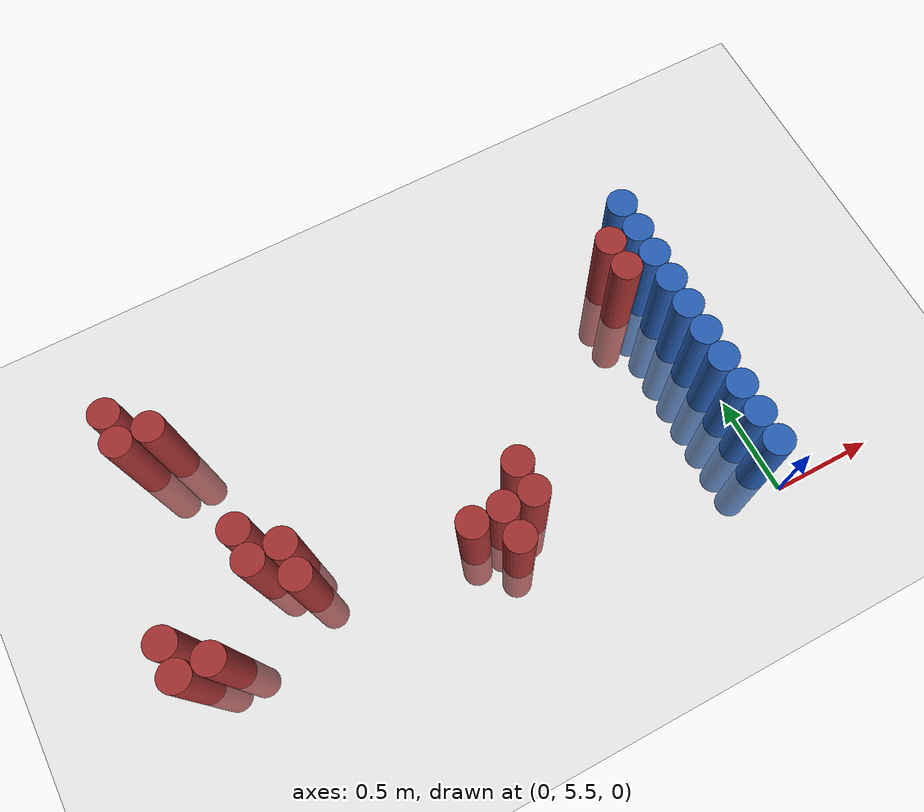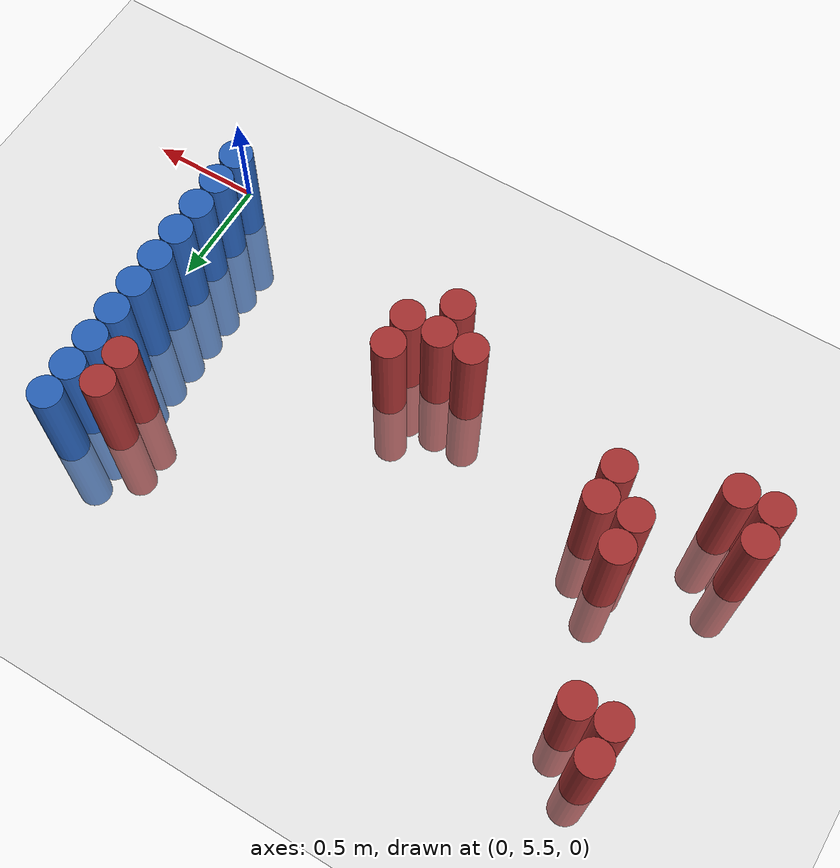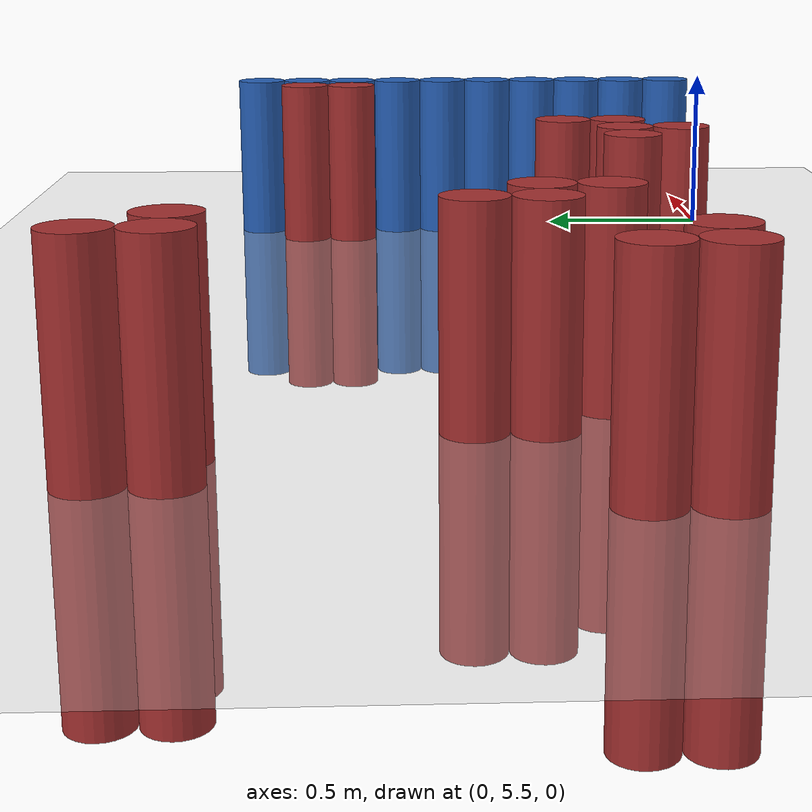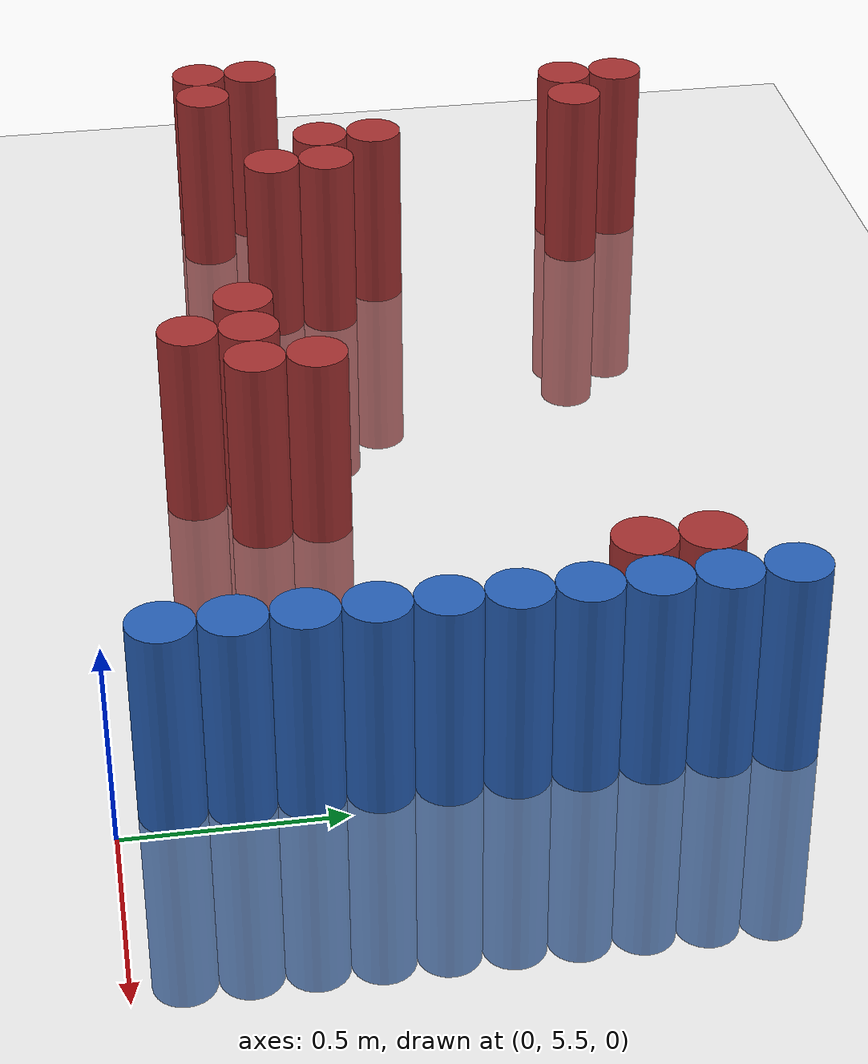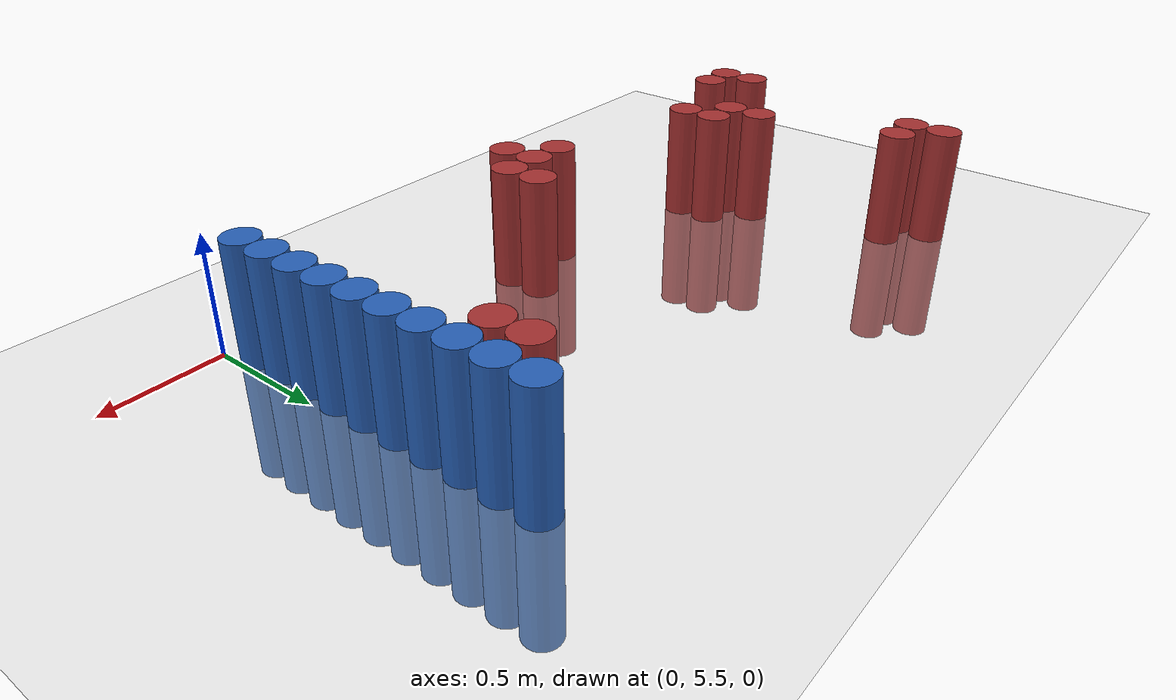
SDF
<sdf version="1.6">
 <world name="world_209">
  <model name="ground_plane">
   <static>1</static>
   <link name="link">
    <collision name="collision">
     <geometry><plane><normal>0 0 1</normal><size>100 100</size></plane></geometry>
     <surface><friction><ode><mu>100</mu><mu2>50</mu2></ode></friction></surface>
    </collision>
    <visual name="visual">
     <cast_shadows>0</cast_shadows>
     <geometry><plane><normal>0 0 1</normal><size>100 100</size></plane></geometry>
     <material>
      <script><uri>file://media/materials/scripts/gazebo.material</uri><name>Gazebo/Grey</name></script>
     </material>
    </visual>
   </link>
  </model>
  <model name="unit_cylinder_169">
   <static>1</static>
   <pose>-2.775000 5.925000 0.000000 0.000000 0.000000 0.000000</pose>
   <link name="link">
    <inertial>
     <mass>1</mass>
     <inertia><ixx>0.145833</ixx><ixy>0</ixy><ixz>0</ixz><iyy>0.145833</iyy><iyz>0</iyz><izz>0.125</izz></inertia>
    </inertial>
    <collision name="collision">
     <geometry><cylinder><radius>0.075000</radius><length>1</length></cylinder></geometry>
    </collision>
    <visual name="visual">
     <geometry><cylinder><radius>0.075000</radius><length>1</length></cylinder></geometry>
     <material>
      <ambient>0.648000 0.192000 0.192000 1</ambient>
      <diffuse>0.648000 0.192000 0.192000 1</diffuse>
     </material>
     <material>
      <script><name>Gazebo/Grey</name><uri>file://media/materials/scripts/gazebo.material</uri></script>
     </material>
    </visual>
   </link>
  </model>
  <model name="unit_cylinder_170">
   <static>1</static>
   <pose>-2.775000 6.075000 0.000000 0.000000 0.000000 0.000000</pose>
   <link name="link">
    <inertial>
     <mass>1</mass>
     <inertia><ixx>0.145833</ixx><ixy>0</ixy><ixz>0</ixz><iyy>0.145833</iyy><iyz>0</iyz><izz>0.125</izz></inertia>
    </inertial>
    <collision name="collision">
     <geometry><cylinder><radius>0.075000</radius><length>1</length></cylinder></geometry>
    </collision>
    <visual name="visual">
     <geometry><cylinder><radius>0.075000</radius><length>1</length></cylinder></geometry>
     <material>
      <ambient>0.648000 0.192000 0.192000 1</ambient>
      <diffuse>0.648000 0.192000 0.192000 1</diffuse>
     </material>
     <material>
      <script><name>Gazebo/Grey</name><uri>file://media/materials/scripts/gazebo.material</uri></script>
     </material>
    </visual>
   </link>
  </model>
  <model name="unit_cylinder_171">
   <static>1</static>
   <pose>-2.625000 5.925000 0.000000 0.000000 0.000000 0.000000</pose>
   <link name="link">
    <inertial>
     <mass>1</mass>
     <inertia><ixx>0.145833</ixx><ixy>0</ixy><ixz>0</ixz><iyy>0.145833</iyy><iyz>0</iyz><izz>0.125</izz></inertia>
    </inertial>
    <collision name="collision">
     <geometry><cylinder><radius>0.075000</radius><length>1</length></cylinder></geometry>
    </collision>
    <visual name="visual">
     <geometry><cylinder><radius>0.075000</radius><length>1</length></cylinder></geometry>
     <material>
      <ambient>0.648000 0.192000 0.192000 1</ambient>
      <diffuse>0.648000 0.192000 0.192000 1</diffuse>
     </material>
     <material>
      <script><name>Gazebo/Grey</name><uri>file://media/materials/scripts/gazebo.material</uri></script>
     </material>
    </visual>
   </link>
  </model>
  <model name="unit_cylinder_172">
   <static>1</static>
   <pose>-2.625000 6.975000 0.000000 0.000000 0.000000 0.000000</pose>
   <link name="link">
    <inertial>
     <mass>1</mass>
     <inertia><ixx>0.145833</ixx><ixy>0</ixy><ixz>0</ixz><iyy>0.145833</iyy><iyz>0</iyz><izz>0.125</izz></inertia>
    </inertial>
    <collision name="collision">
     <geometry><cylinder><radius>0.075000</radius><length>1</length></cylinder></geometry>
    </collision>
    <visual name="visual">
     <geometry><cylinder><radius>0.075000</radius><length>1</length></cylinder></geometry>
     <material>
      <ambient>0.648000 0.192000 0.192000 1</ambient>
      <diffuse>0.648000 0.192000 0.192000 1</diffuse>
     </material>
     <material>
      <script><name>Gazebo/Grey</name><uri>file://media/materials/scripts/gazebo.material</uri></script>
     </material>
    </visual>
   </link>
  </model>
  <model name="unit_cylinder_173">
   <static>1</static>
   <pose>-2.625000 7.125000 0.000000 0.000000 0.000000 0.000000</pose>
   <link name="link">
    <inertial>
     <mass>1</mass>
     <inertia><ixx>0.145833</ixx><ixy>0</ixy><ixz>0</ixz><iyy>0.145833</iyy><iyz>0</iyz><izz>0.125</izz></inertia>
    </inertial>
    <collision name="collision">
     <geometry><cylinder><radius>0.075000</radius><length>1</length></cylinder></geometry>
    </collision>
    <visual name="visual">
     <geometry><cylinder><radius>0.075000</radius><length>1</length></cylinder></geometry>
     <material>
      <ambient>0.648000 0.192000 0.192000 1</ambient>
      <diffuse>0.648000 0.192000 0.192000 1</diffuse>
     </material>
     <material>
      <script><name>Gazebo/Grey</name><uri>file://media/materials/scripts/gazebo.material</uri></script>
     </material>
    </visual>
   </link>
  </model>
  <model name="unit_cylinder_174">
   <static>1</static>
   <pose>-2.475000 6.975000 0.000000 0.000000 0.000000 0.000000</pose>
   <link name="link">
    <inertial>
     <mass>1</mass>
     <inertia><ixx>0.145833</ixx><ixy>0</ixy><ixz>0</ixz><iyy>0.145833</iyy><iyz>0</iyz><izz>0.125</izz></inertia>
    </inertial>
    <collision name="collision">
     <geometry><cylinder><radius>0.075000</radius><length>1</length></cylinder></geometry>
    </collision>
    <visual name="visual">
     <geometry><cylinder><radius>0.075000</radius><length>1</length></cylinder></geometry>
     <material>
      <ambient>0.648000 0.192000 0.192000 1</ambient>
      <diffuse>0.648000 0.192000 0.192000 1</diffuse>
     </material>
     <material>
      <script><name>Gazebo/Grey</name><uri>file://media/materials/scripts/gazebo.material</uri></script>
     </material>
    </visual>
   </link>
  </model>
  <model name="unit_cylinder_175">
   <static>1</static>
   <pose>-2.325000 6.225000 0.000000 0.000000 0.000000 0.000000</pose>
   <link name="link">
    <inertial>
     <mass>1</mass>
     <inertia><ixx>0.145833</ixx><ixy>0</ixy><ixz>0</ixz><iyy>0.145833</iyy><iyz>0</iyz><izz>0.125</izz></inertia>
    </inertial>
    <collision name="collision">
     <geometry><cylinder><radius>0.075000</radius><length>1</length></cylinder></geometry>
    </collision>
    <visual name="visual">
     <geometry><cylinder><radius>0.075000</radius><length>1</length></cylinder></geometry>
     <material>
      <ambient>0.648000 0.192000 0.192000 1</ambient>
      <diffuse>0.648000 0.192000 0.192000 1</diffuse>
     </material>
     <material>
      <script><name>Gazebo/Grey</name><uri>file://media/materials/scripts/gazebo.material</uri></script>
     </material>
    </visual>
   </link>
  </model>
  <model name="unit_cylinder_176">
   <static>1</static>
   <pose>-2.325000 6.375000 0.000000 0.000000 0.000000 0.000000</pose>
   <link name="link">
    <inertial>
     <mass>1</mass>
     <inertia><ixx>0.145833</ixx><ixy>0</ixy><ixz>0</ixz><iyy>0.145833</iyy><iyz>0</iyz><izz>0.125</izz></inertia>
    </inertial>
    <collision name="collision">
     <geometry><cylinder><radius>0.075000</radius><length>1</length></cylinder></geometry>
    </collision>
    <visual name="visual">
     <geometry><cylinder><radius>0.075000</radius><length>1</length></cylinder></geometry>
     <material>
      <ambient>0.648000 0.192000 0.192000 1</ambient>
      <diffuse>0.648000 0.192000 0.192000 1</diffuse>
     </material>
     <material>
      <script><name>Gazebo/Grey</name><uri>file://media/materials/scripts/gazebo.material</uri></script>
     </material>
    </visual>
   </link>
  </model>
  <model name="unit_cylinder_177">
   <static>1</static>
   <pose>-2.175000 6.075000 0.000000 0.000000 0.000000 0.000000</pose>
   <link name="link">
    <inertial>
     <mass>1</mass>
     <inertia><ixx>0.145833</ixx><ixy>0</ixy><ixz>0</ixz><iyy>0.145833</iyy><iyz>0</iyz><izz>0.125</izz></inertia>
    </inertial>
    <collision name="collision">
     <geometry><cylinder><radius>0.075000</radius><length>1</length></cylinder></geometry>
    </collision>
    <visual name="visual">
     <geometry><cylinder><radius>0.075000</radius><length>1</length></cylinder></geometry>
     <material>
      <ambient>0.648000 0.192000 0.192000 1</ambient>
      <diffuse>0.648000 0.192000 0.192000 1</diffuse>
     </material>
     <material>
      <script><name>Gazebo/Grey</name><uri>file://media/materials/scripts/gazebo.material</uri></script>
     </material>
    </visual>
   </link>
  </model>
  <model name="unit_cylinder_178">
   <static>1</static>
   <pose>-2.175000 6.225000 0.000000 0.000000 0.000000 0.000000</pose>
   <link name="link">
    <inertial>
     <mass>1</mass>
     <inertia><ixx>0.145833</ixx><ixy>0</ixy><ixz>0</ixz><iyy>0.145833</iyy><iyz>0</iyz><izz>0.125</izz></inertia>
    </inertial>
    <collision name="collision">
     <geometry><cylinder><radius>0.075000</radius><length>1</length></cylinder></geometry>
    </collision>
    <visual name="visual">
     <geometry><cylinder><radius>0.075000</radius><length>1</length></cylinder></geometry>
     <material>
      <ambient>0.648000 0.192000 0.192000 1</ambient>
      <diffuse>0.648000 0.192000 0.192000 1</diffuse>
     </material>
     <material>
      <script><name>Gazebo/Grey</name><uri>file://media/materials/scripts/gazebo.material</uri></script>
     </material>
    </visual>
   </link>
  </model>
  <model name="unit_cylinder_179">
   <static>1</static>
   <pose>-1.425000 5.925000 0.000000 0.000000 0.000000 0.000000</pose>
   <link name="link">
    <inertial>
     <mass>1</mass>
     <inertia><ixx>0.145833</ixx><ixy>0</ixy><ixz>0</ixz><iyy>0.145833</iyy><iyz>0</iyz><izz>0.125</izz></inertia>
    </inertial>
    <collision name="collision">
     <geometry><cylinder><radius>0.075000</radius><length>1</length></cylinder></geometry>
    </collision>
    <visual name="visual">
     <geometry><cylinder><radius>0.075000</radius><length>1</length></cylinder></geometry>
     <material>
      <ambient>0.648000 0.192000 0.192000 1</ambient>
      <diffuse>0.648000 0.192000 0.192000 1</diffuse>
     </material>
     <material>
      <script><name>Gazebo/Grey</name><uri>file://media/materials/scripts/gazebo.material</uri></script>
     </material>
    </visual>
   </link>
  </model>
  <model name="unit_cylinder_180">
   <static>1</static>
   <pose>-1.275000 5.775000 0.000000 0.000000 0.000000 0.000000</pose>
   <link name="link">
    <inertial>
     <mass>1</mass>
     <inertia><ixx>0.145833</ixx><ixy>0</ixy><ixz>0</ixz><iyy>0.145833</iyy><iyz>0</iyz><izz>0.125</izz></inertia>
    </inertial>
    <collision name="collision">
     <geometry><cylinder><radius>0.075000</radius><length>1</length></cylinder></geometry>
    </collision>
    <visual name="visual">
     <geometry><cylinder><radius>0.075000</radius><length>1</length></cylinder></geometry>
     <material>
      <ambient>0.648000 0.192000 0.192000 1</ambient>
      <diffuse>0.648000 0.192000 0.192000 1</diffuse>
     </material>
     <material>
      <script><name>Gazebo/Grey</name><uri>file://media/materials/scripts/gazebo.material</uri></script>
     </material>
    </visual>
   </link>
  </model>
  <model name="unit_cylinder_181">
   <static>1</static>
   <pose>-1.275000 5.925000 0.000000 0.000000 0.000000 0.000000</pose>
   <link name="link">
    <inertial>
     <mass>1</mass>
     <inertia><ixx>0.145833</ixx><ixy>0</ixy><ixz>0</ixz><iyy>0.145833</iyy><iyz>0</iyz><izz>0.125</izz></inertia>
    </inertial>
    <collision name="collision">
     <geometry><cylinder><radius>0.075000</radius><length>1</length></cylinder></geometry>
    </collision>
    <visual name="visual">
     <geometry><cylinder><radius>0.075000</radius><length>1</length></cylinder></geometry>
     <material>
      <ambient>0.648000 0.192000 0.192000 1</ambient>
      <diffuse>0.648000 0.192000 0.192000 1</diffuse>
     </material>
     <material>
      <script><name>Gazebo/Grey</name><uri>file://media/materials/scripts/gazebo.material</uri></script>
     </material>
    </visual>
   </link>
  </model>
  <model name="unit_cylinder_182">
   <static>1</static>
   <pose>-1.125000 5.925000 0.000000 0.000000 0.000000 0.000000</pose>
   <link name="link">
    <inertial>
     <mass>1</mass>
     <inertia><ixx>0.145833</ixx><ixy>0</ixy><ixz>0</ixz><iyy>0.145833</iyy><iyz>0</iyz><izz>0.125</izz></inertia>
    </inertial>
    <collision name="collision">
     <geometry><cylinder><radius>0.075000</radius><length>1</length></cylinder></geometry>
    </collision>
    <visual name="visual">
     <geometry><cylinder><radius>0.075000</radius><length>1</length></cylinder></geometry>
     <material>
      <ambient>0.648000 0.192000 0.192000 1</ambient>
      <diffuse>0.648000 0.192000 0.192000 1</diffuse>
     </material>
     <material>
      <script><name>Gazebo/Grey</name><uri>file://media/materials/scripts/gazebo.material</uri></script>
     </material>
    </visual>
   </link>
  </model>
  <model name="unit_cylinder_183">
   <static>1</static>
   <pose>-1.125000 6.075000 0.000000 0.000000 0.000000 0.000000</pose>
   <link name="link">
    <inertial>
     <mass>1</mass>
     <inertia><ixx>0.145833</ixx><ixy>0</ixy><ixz>0</ixz><iyy>0.145833</iyy><iyz>0</iyz><izz>0.125</izz></inertia>
    </inertial>
    <collision name="collision">
     <geometry><cylinder><radius>0.075000</radius><length>1</length></cylinder></geometry>
    </collision>
    <visual name="visual">
     <geometry><cylinder><radius>0.075000</radius><length>1</length></cylinder></geometry>
     <material>
      <ambient>0.648000 0.192000 0.192000 1</ambient>
      <diffuse>0.648000 0.192000 0.192000 1</diffuse>
     </material>
     <material>
      <script><name>Gazebo/Grey</name><uri>file://media/materials/scripts/gazebo.material</uri></script>
     </material>
    </visual>
   </link>
  </model>
  <model name="unit_cylinder_184">
   <static>1</static>
   <pose>-0.225000 6.675000 0.000000 0.000000 0.000000 0.000000</pose>
   <link name="link">
    <inertial>
     <mass>1</mass>
     <inertia><ixx>0.145833</ixx><ixy>0</ixy><ixz>0</ixz><iyy>0.145833</iyy><iyz>0</iyz><izz>0.125</izz></inertia>
    </inertial>
    <collision name="collision">
     <geometry><cylinder><radius>0.075000</radius><length>1</length></cylinder></geometry>
    </collision>
    <visual name="visual">
     <geometry><cylinder><radius>0.075000</radius><length>1</length></cylinder></geometry>
     <material>
      <ambient>0.648000 0.192000 0.192000 1</ambient>
      <diffuse>0.648000 0.192000 0.192000 1</diffuse>
     </material>
     <material>
      <script><name>Gazebo/Grey</name><uri>file://media/materials/scripts/gazebo.material</uri></script>
     </material>
    </visual>
   </link>
  </model>
  <model name="unit_cylinder_185">
   <static>1</static>
   <pose>-0.225000 6.825000 0.000000 0.000000 0.000000 0.000000</pose>
   <link name="link">
    <inertial>
     <mass>1</mass>
     <inertia><ixx>0.145833</ixx><ixy>0</ixy><ixz>0</ixz><iyy>0.145833</iyy><iyz>0</iyz><izz>0.125</izz></inertia>
    </inertial>
    <collision name="collision">
     <geometry><cylinder><radius>0.075000</radius><length>1</length></cylinder></geometry>
    </collision>
    <visual name="visual">
     <geometry><cylinder><radius>0.075000</radius><length>1</length></cylinder></geometry>
     <material>
      <ambient>0.648000 0.192000 0.192000 1</ambient>
      <diffuse>0.648000 0.192000 0.192000 1</diffuse>
     </material>
     <material>
      <script><name>Gazebo/Grey</name><uri>file://media/materials/scripts/gazebo.material</uri></script>
     </material>
    </visual>
   </link>
  </model>
  <model name="unit_cylinder_191">
   <static>1</static>
   <pose>-0.075000 5.625000 0.000000 0.000000 0.000000 0.000000</pose>
   <link name="link">
    <inertial>
     <mass>1</mass>
     <inertia><ixx>0.145833</ixx><ixy>0</ixy><ixz>0</ixz><iyy>0.145833</iyy><iyz>0</iyz><izz>0.125</izz></inertia>
    </inertial>
    <collision name="collision">
     <geometry><cylinder><radius>0.075000</radius><length>1</length></cylinder></geometry>
    </collision>
    <visual name="visual">
     <geometry><cylinder><radius>0.075000</radius><length>1</length></cylinder></geometry>
     <material>
      <ambient>0.152000 0.379000 0.720000 1</ambient>
      <diffuse>0.152000 0.379000 0.720000 1</diffuse>
     </material>
     <material>
      <script><name>Gazebo/Grey</name><uri>file://media/materials/scripts/gazebo.material</uri></script>
     </material>
    </visual>
   </link>
  </model>
  <model name="unit_cylinder_192">
   <static>1</static>
   <pose>-0.075000 5.775000 0.000000 0.000000 0.000000 0.000000</pose>
   <link name="link">
    <inertial>
     <mass>1</mass>
     <inertia><ixx>0.145833</ixx><ixy>0</ixy><ixz>0</ixz><iyy>0.145833</iyy><iyz>0</iyz><izz>0.125</izz></inertia>
    </inertial>
    <collision name="collision">
     <geometry><cylinder><radius>0.075000</radius><length>1</length></cylinder></geometry>
    </collision>
    <visual name="visual">
     <geometry><cylinder><radius>0.075000</radius><length>1</length></cylinder></geometry>
     <material>
      <ambient>0.152000 0.379000 0.720000 1</ambient>
      <diffuse>0.152000 0.379000 0.720000 1</diffuse>
     </material>
     <material>
      <script><name>Gazebo/Grey</name><uri>file://media/materials/scripts/gazebo.material</uri></script>
     </material>
    </visual>
   </link>
  </model>
  <model name="unit_cylinder_193">
   <static>1</static>
   <pose>-0.075000 5.925000 0.000000 0.000000 0.000000 0.000000</pose>
   <link name="link">
    <inertial>
     <mass>1</mass>
     <inertia><ixx>0.145833</ixx><ixy>0</ixy><ixz>0</ixz><iyy>0.145833</iyy><iyz>0</iyz><izz>0.125</izz></inertia>
    </inertial>
    <collision name="collision">
     <geometry><cylinder><radius>0.075000</radius><length>1</length></cylinder></geometry>
    </collision>
    <visual name="visual">
     <geometry><cylinder><radius>0.075000</radius><length>1</length></cylinder></geometry>
     <material>
      <ambient>0.152000 0.379000 0.720000 1</ambient>
      <diffuse>0.152000 0.379000 0.720000 1</diffuse>
     </material>
     <material>
      <script><name>Gazebo/Grey</name><uri>file://media/materials/scripts/gazebo.material</uri></script>
     </material>
    </visual>
   </link>
  </model>
  <model name="unit_cylinder_194">
   <static>1</static>
   <pose>-0.075000 6.075000 0.000000 0.000000 0.000000 0.000000</pose>
   <link name="link">
    <inertial>
     <mass>1</mass>
     <inertia><ixx>0.145833</ixx><ixy>0</ixy><ixz>0</ixz><iyy>0.145833</iyy><iyz>0</iyz><izz>0.125</izz></inertia>
    </inertial>
    <collision name="collision">
     <geometry><cylinder><radius>0.075000</radius><length>1</length></cylinder></geometry>
    </collision>
    <visual name="visual">
     <geometry><cylinder><radius>0.075000</radius><length>1</length></cylinder></geometry>
     <material>
      <ambient>0.152000 0.379000 0.720000 1</ambient>
      <diffuse>0.152000 0.379000 0.720000 1</diffuse>
     </material>
     <material>
      <script><name>Gazebo/Grey</name><uri>file://media/materials/scripts/gazebo.material</uri></script>
     </material>
    </visual>
   </link>
  </model>
  <model name="unit_cylinder_195">
   <static>1</static>
   <pose>-0.075000 6.225000 0.000000 0.000000 0.000000 0.000000</pose>
   <link name="link">
    <inertial>
     <mass>1</mass>
     <inertia><ixx>0.145833</ixx><ixy>0</ixy><ixz>0</ixz><iyy>0.145833</iyy><iyz>0</iyz><izz>0.125</izz></inertia>
    </inertial>
    <collision name="collision">
     <geometry><cylinder><radius>0.075000</radius><length>1</length></cylinder></geometry>
    </collision>
    <visual name="visual">
     <geometry><cylinder><radius>0.075000</radius><length>1</length></cylinder></geometry>
     <material>
      <ambient>0.152000 0.379000 0.720000 1</ambient>
      <diffuse>0.152000 0.379000 0.720000 1</diffuse>
     </material>
     <material>
      <script><name>Gazebo/Grey</name><uri>file://media/materials/scripts/gazebo.material</uri></script>
     </material>
    </visual>
   </link>
  </model>
  <model name="unit_cylinder_196">
   <static>1</static>
   <pose>-0.075000 6.375000 0.000000 0.000000 0.000000 0.000000</pose>
   <link name="link">
    <inertial>
     <mass>1</mass>
     <inertia><ixx>0.145833</ixx><ixy>0</ixy><ixz>0</ixz><iyy>0.145833</iyy><iyz>0</iyz><izz>0.125</izz></inertia>
    </inertial>
    <collision name="collision">
     <geometry><cylinder><radius>0.075000</radius><length>1</length></cylinder></geometry>
    </collision>
    <visual name="visual">
     <geometry><cylinder><radius>0.075000</radius><length>1</length></cylinder></geometry>
     <material>
      <ambient>0.152000 0.379000 0.720000 1</ambient>
      <diffuse>0.152000 0.379000 0.720000 1</diffuse>
     </material>
     <material>
      <script><name>Gazebo/Grey</name><uri>file://media/materials/scripts/gazebo.material</uri></script>
     </material>
    </visual>
   </link>
  </model>
  <model name="unit_cylinder_197">
   <static>1</static>
   <pose>-0.075000 6.525000 0.000000 0.000000 0.000000 0.000000</pose>
   <link name="link">
    <inertial>
     <mass>1</mass>
     <inertia><ixx>0.145833</ixx><ixy>0</ixy><ixz>0</ixz><iyy>0.145833</iyy><iyz>0</iyz><izz>0.125</izz></inertia>
    </inertial>
    <collision name="collision">
     <geometry><cylinder><radius>0.075000</radius><length>1</length></cylinder></geometry>
    </collision>
    <visual name="visual">
     <geometry><cylinder><radius>0.075000</radius><length>1</length></cylinder></geometry>
     <material>
      <ambient>0.152000 0.379000 0.720000 1</ambient>
      <diffuse>0.152000 0.379000 0.720000 1</diffuse>
     </material>
     <material>
      <script><name>Gazebo/Grey</name><uri>file://media/materials/scripts/gazebo.material</uri></script>
     </material>
    </visual>
   </link>
  </model>
  <model name="unit_cylinder_198">
   <static>1</static>
   <pose>-0.075000 6.675000 0.000000 0.000000 0.000000 0.000000</pose>
   <link name="link">
    <inertial>
     <mass>1</mass>
     <inertia><ixx>0.145833</ixx><ixy>0</ixy><ixz>0</ixz><iyy>0.145833</iyy><iyz>0</iyz><izz>0.125</izz></inertia>
    </inertial>
    <collision name="collision">
     <geometry><cylinder><radius>0.075000</radius><length>1</length></cylinder></geometry>
    </collision>
    <visual name="visual">
     <geometry><cylinder><radius>0.075000</radius><length>1</length></cylinder></geometry>
     <material>
      <ambient>0.152000 0.379000 0.720000 1</ambient>
      <diffuse>0.152000 0.379000 0.720000 1</diffuse>
     </material>
     <material>
      <script><name>Gazebo/Grey</name><uri>file://media/materials/scripts/gazebo.material</uri></script>
     </material>
    </visual>
   </link>
  </model>
  <model name="unit_cylinder_199">
   <static>1</static>
   <pose>-0.075000 6.825000 0.000000 0.000000 0.000000 0.000000</pose>
   <link name="link">
    <inertial>
     <mass>1</mass>
     <inertia><ixx>0.145833</ixx><ixy>0</ixy><ixz>0</ixz><iyy>0.145833</iyy><iyz>0</iyz><izz>0.125</izz></inertia>
    </inertial>
    <collision name="collision">
     <geometry><cylinder><radius>0.075000</radius><length>1</length></cylinder></geometry>
    </collision>
    <visual name="visual">
     <geometry><cylinder><radius>0.075000</radius><length>1</length></cylinder></geometry>
     <material>
      <ambient>0.152000 0.379000 0.720000 1</ambient>
      <diffuse>0.152000 0.379000 0.720000 1</diffuse>
     </material>
     <material>
      <script><name>Gazebo/Grey</name><uri>file://media/materials/scripts/gazebo.material</uri></script>
     </material>
    </visual>
   </link>
  </model>
  <model name="unit_cylinder_200">
   <static>1</static>
   <pose>-0.075000 6.975000 0.000000 0.000000 0.000000 0.000000</pose>
   <link name="link">
    <inertial>
     <mass>1</mass>
     <inertia><ixx>0.145833</ixx><ixy>0</ixy><ixz>0</ixz><iyy>0.145833</iyy><iyz>0</iyz><izz>0.125</izz></inertia>
    </inertial>
    <collision name="collision">
     <geometry><cylinder><radius>0.075000</radius><length>1</length></cylinder></geometry>
    </collision>
    <visual name="visual">
     <geometry><cylinder><radius>0.075000</radius><length>1</length></cylinder></geometry>
     <material>
      <ambient>0.152000 0.379000 0.720000 1</ambient>
      <diffuse>0.152000 0.379000 0.720000 1</diffuse>
     </material>
     <material>
      <script><name>Gazebo/Grey</name><uri>file://media/materials/scripts/gazebo.material</uri></script>
     </material>
    </visual>
   </link>
  </model>
 </world>
</sdf>
